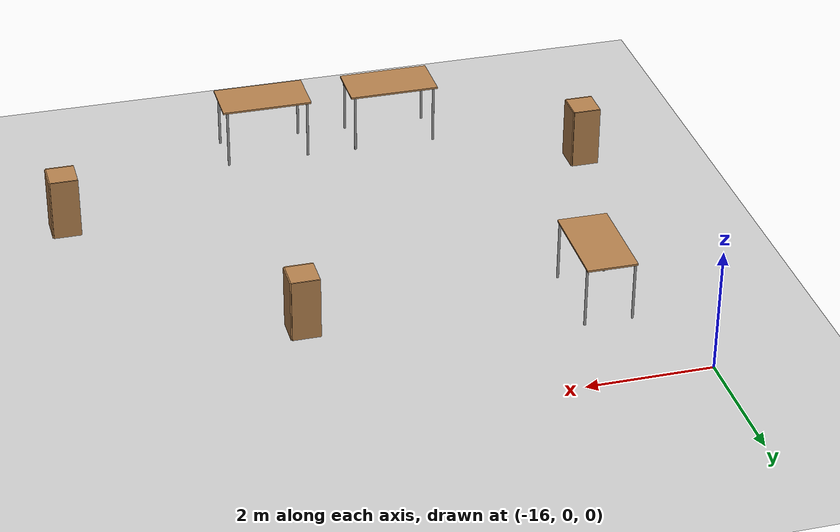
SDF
<sdf version="1.7">
 <world name="default">
  <model name="ground_plane">
   <static>1</static>
   <link name="link">
    <collision name="collision">
     <geometry><plane><normal>0 0 1</normal><size>100 100</size></plane></geometry>
     <surface><friction><ode><mu>100</mu><mu2>50</mu2></ode></friction></surface>
    </collision>
    <visual name="visual">
     <cast_shadows>0</cast_shadows>
     <geometry><plane><normal>0 0 1</normal><size>100 100</size></plane></geometry>
     <material>
      <script><uri>file://media/materials/scripts/gazebo.material</uri><name>Gazebo/Grey</name></script>
     </material>
    </visual>
   </link>
  </model>
  <model name="cabinet">
   <static>1</static>
   <link name="cabinet_bottom_plate">
    <inertial>
     <pose>0 0 -1 0 -0 0</pose>
     <inertia><ixx>2.05</ixx><ixy>0</ixy><ixz>0</ixz><iyy>2.05</iyy><iyz>0</iyz><izz>2.05</izz></inertia>
     <mass>25</mass>
    </inertial>
    <collision name="cabinet_bottom_plate_geom">
     <pose>0 0 0.01 0 -0 0</pose>
     <geometry><box><size>0.45 0.45 0.02</size></box></geometry>
    </collision>
    <visual name="cabinet_bottom_plate_geom_visual">
     <pose>0 0 0.01 0 -0 0</pose>
     <geometry><box><size>0.45 0.45 0.02</size></box></geometry>
     <material>
      <script><uri>file://media/materials/scripts/gazebo.material</uri><name>Gazebo/Wood</name></script>
     </material>
    </visual>
    <collision name="cabinet_bottom_plate_geom_cabinet_back_plate">
     <pose>0.235 0 0.51 0 -0 0</pose>
     <geometry><box><size>0.02 0.45 1.02</size></box></geometry>
    </collision>
    <visual name="cabinet_bottom_plate_geom_cabinet_back_plate_visual">
     <pose>0.235 0 0.51 0 -0 0</pose>
     <geometry><box><size>0.02 0.45 1.02</size></box></geometry>
     <material>
      <script><uri>file://media/materials/scripts/gazebo.material</uri><name>Gazebo/Wood</name></script>
     </material>
    </visual>
    <collision name="cabinet_bottom_plate_geom_cabinet_left_plate">
     <pose>0 0.235 0.51 0 -0 0</pose>
     <geometry><box><size>0.45 0.02 1.02</size></box></geometry>
    </collision>
    <visual name="cabinet_bottom_plate_geom_cabinet_left_plate_visual">
     <pose>0 0.235 0.51 0 -0 0</pose>
     <geometry><box><size>0.45 0.02 1.02</size></box></geometry>
     <material>
      <script><uri>file://media/materials/scripts/gazebo.material</uri><name>Gazebo/Wood</name></script>
     </material>
    </visual>
    <collision name="cabinet_bottom_plate_geom_cabinet_middle_plate">
     <pose>0 0 0.51 0 -0 0</pose>
     <geometry><box><size>0.45 0.45 0.02</size></box></geometry>
    </collision>
    <visual name="cabinet_bottom_plate_geom_cabinet_middle_plate_visual">
     <pose>0 0 0.51 0 -0 0</pose>
     <geometry><box><size>0.45 0.45 0.02</size></box></geometry>
     <material>
      <script><uri>file://media/materials/scripts/gazebo.material</uri><name>Gazebo/Wood</name></script>
     </material>
    </visual>
    <collision name="cabinet_bottom_plate_geom_cabinet_right_plate">
     <pose>0 -0.235 0.51 0 -0 0</pose>
     <geometry><box><size>0.45 0.02 1.02</size></box></geometry>
    </collision>
    <visual name="cabinet_bottom_plate_geom_cabinet_right_plate_visual">
     <pose>0 -0.235 0.51 0 -0 0</pose>
     <geometry><box><size>0.45 0.02 1.02</size></box></geometry>
     <material>
      <script><uri>file://media/materials/scripts/gazebo.material</uri><name>Gazebo/Wood</name></script>
     </material>
    </visual>
    <collision name="cabinet_bottom_plate_geom_cabinet_top_plate">
     <pose>0 0 1.01 0 -0 0</pose>
     <geometry><box><size>0.45 0.45 0.02</size></box></geometry>
    </collision>
    <visual name="cabinet_bottom_plate_geom_cabinet_top_plate_visual">
     <pose>0 0 1.01 0 -0 0</pose>
     <geometry><box><size>0.45 0.45 0.02</size></box></geometry>
     <material>
      <script><uri>file://media/materials/scripts/gazebo.material</uri><name>Gazebo/Wood</name></script>
     </material>
    </visual>
   </link>
   <pose>-16.043 -6.34419 0 0 -0 0</pose>
  </model>
  <model name="cabinet_0">
   <static>1</static>
   <link name="cabinet_bottom_plate">
    <inertial>
     <pose>0 0 -1 0 -0 0</pose>
     <inertia><ixx>2.05</ixx><ixy>0</ixy><ixz>0</ixz><iyy>2.05</iyy><iyz>0</iyz><izz>2.05</izz></inertia>
     <mass>25</mass>
    </inertial>
    <collision name="cabinet_bottom_plate_geom">
     <pose>0 0 0.01 0 -0 0</pose>
     <geometry><box><size>0.45 0.45 0.02</size></box></geometry>
    </collision>
    <visual name="cabinet_bottom_plate_geom_visual">
     <pose>0 0 0.01 0 -0 0</pose>
     <geometry><box><size>0.45 0.45 0.02</size></box></geometry>
     <material>
      <script><uri>file://media/materials/scripts/gazebo.material</uri><name>Gazebo/Wood</name></script>
     </material>
    </visual>
    <collision name="cabinet_bottom_plate_geom_cabinet_back_plate">
     <pose>0.235 0 0.51 0 -0 0</pose>
     <geometry><box><size>0.02 0.45 1.02</size></box></geometry>
    </collision>
    <visual name="cabinet_bottom_plate_geom_cabinet_back_plate_visual">
     <pose>0.235 0 0.51 0 -0 0</pose>
     <geometry><box><size>0.02 0.45 1.02</size></box></geometry>
     <material>
      <script><uri>file://media/materials/scripts/gazebo.material</uri><name>Gazebo/Wood</name></script>
     </material>
    </visual>
    <collision name="cabinet_bottom_plate_geom_cabinet_left_plate">
     <pose>0 0.235 0.51 0 -0 0</pose>
     <geometry><box><size>0.45 0.02 1.02</size></box></geometry>
    </collision>
    <visual name="cabinet_bottom_plate_geom_cabinet_left_plate_visual">
     <pose>0 0.235 0.51 0 -0 0</pose>
     <geometry><box><size>0.45 0.02 1.02</size></box></geometry>
     <material>
      <script><uri>file://media/materials/scripts/gazebo.material</uri><name>Gazebo/Wood</name></script>
     </material>
    </visual>
    <collision name="cabinet_bottom_plate_geom_cabinet_middle_plate">
     <pose>0 0 0.51 0 -0 0</pose>
     <geometry><box><size>0.45 0.45 0.02</size></box></geometry>
    </collision>
    <visual name="cabinet_bottom_plate_geom_cabinet_middle_plate_visual">
     <pose>0 0 0.51 0 -0 0</pose>
     <geometry><box><size>0.45 0.45 0.02</size></box></geometry>
     <material>
      <script><uri>file://media/materials/scripts/gazebo.material</uri><name>Gazebo/Wood</name></script>
     </material>
    </visual>
    <collision name="cabinet_bottom_plate_geom_cabinet_right_plate">
     <pose>0 -0.235 0.51 0 -0 0</pose>
     <geometry><box><size>0.45 0.02 1.02</size></box></geometry>
    </collision>
    <visual name="cabinet_bottom_plate_geom_cabinet_right_plate_visual">
     <pose>0 -0.235 0.51 0 -0 0</pose>
     <geometry><box><size>0.45 0.02 1.02</size></box></geometry>
     <material>
      <script><uri>file://media/materials/scripts/gazebo.material</uri><name>Gazebo/Wood</name></script>
     </material>
    </visual>
    <collision name="cabinet_bottom_plate_geom_cabinet_top_plate">
     <pose>0 0 1.01 0 -0 0</pose>
     <geometry><box><size>0.45 0.45 0.02</size></box></geometry>
    </collision>
    <visual name="cabinet_bottom_plate_geom_cabinet_top_plate_visual">
     <pose>0 0 1.01 0 -0 0</pose>
     <geometry><box><size>0.45 0.45 0.02</size></box></geometry>
     <material>
      <script><uri>file://media/materials/scripts/gazebo.material</uri><name>Gazebo/Wood</name></script>
     </material>
    </visual>
   </link>
   <pose>-7.30045 -6.2673 0 0 -0 0</pose>
  </model>
  <model name="cabinet_1">
   <static>1</static>
   <link name="cabinet_bottom_plate">
    <inertial>
     <pose>0 0 -1 0 -0 0</pose>
     <inertia><ixx>2.05</ixx><ixy>0</ixy><ixz>0</ixz><iyy>2.05</iyy><iyz>0</iyz><izz>2.05</izz></inertia>
     <mass>25</mass>
    </inertial>
    <collision name="cabinet_bottom_plate_geom">
     <pose>0 0 0.01 0 -0 0</pose>
     <geometry><box><size>0.45 0.45 0.02</size></box></geometry>
    </collision>
    <visual name="cabinet_bottom_plate_geom_visual">
     <pose>0 0 0.01 0 -0 0</pose>
     <geometry><box><size>0.45 0.45 0.02</size></box></geometry>
     <material>
      <script><uri>file://media/materials/scripts/gazebo.material</uri><name>Gazebo/Wood</name></script>
     </material>
    </visual>
    <collision name="cabinet_bottom_plate_geom_cabinet_back_plate">
     <pose>0.235 0 0.51 0 -0 0</pose>
     <geometry><box><size>0.02 0.45 1.02</size></box></geometry>
    </collision>
    <visual name="cabinet_bottom_plate_geom_cabinet_back_plate_visual">
     <pose>0.235 0 0.51 0 -0 0</pose>
     <geometry><box><size>0.02 0.45 1.02</size></box></geometry>
     <material>
      <script><uri>file://media/materials/scripts/gazebo.material</uri><name>Gazebo/Wood</name></script>
     </material>
    </visual>
    <collision name="cabinet_bottom_plate_geom_cabinet_left_plate">
     <pose>0 0.235 0.51 0 -0 0</pose>
     <geometry><box><size>0.45 0.02 1.02</size></box></geometry>
    </collision>
    <visual name="cabinet_bottom_plate_geom_cabinet_left_plate_visual">
     <pose>0 0.235 0.51 0 -0 0</pose>
     <geometry><box><size>0.45 0.02 1.02</size></box></geometry>
     <material>
      <script><uri>file://media/materials/scripts/gazebo.material</uri><name>Gazebo/Wood</name></script>
     </material>
    </visual>
    <collision name="cabinet_bottom_plate_geom_cabinet_middle_plate">
     <pose>0 0 0.51 0 -0 0</pose>
     <geometry><box><size>0.45 0.45 0.02</size></box></geometry>
    </collision>
    <visual name="cabinet_bottom_plate_geom_cabinet_middle_plate_visual">
     <pose>0 0 0.51 0 -0 0</pose>
     <geometry><box><size>0.45 0.45 0.02</size></box></geometry>
     <material>
      <script><uri>file://media/materials/scripts/gazebo.material</uri><name>Gazebo/Wood</name></script>
     </material>
    </visual>
    <collision name="cabinet_bottom_plate_geom_cabinet_right_plate">
     <pose>0 -0.235 0.51 0 -0 0</pose>
     <geometry><box><size>0.45 0.02 1.02</size></box></geometry>
    </collision>
    <visual name="cabinet_bottom_plate_geom_cabinet_right_plate_visual">
     <pose>0 -0.235 0.51 0 -0 0</pose>
     <geometry><box><size>0.45 0.02 1.02</size></box></geometry>
     <material>
      <script><uri>file://media/materials/scripts/gazebo.material</uri><name>Gazebo/Wood</name></script>
     </material>
    </visual>
    <collision name="cabinet_bottom_plate_geom_cabinet_top_plate">
     <pose>0 0 1.01 0 -0 0</pose>
     <geometry><box><size>0.45 0.45 0.02</size></box></geometry>
    </collision>
    <visual name="cabinet_bottom_plate_geom_cabinet_top_plate_visual">
     <pose>0 0 1.01 0 -0 0</pose>
     <geometry><box><size>0.45 0.45 0.02</size></box></geometry>
     <material>
      <script><uri>file://media/materials/scripts/gazebo.material</uri><name>Gazebo/Wood</name></script>
     </material>
    </visual>
   </link>
   <pose>-10.3507 -2.49286 0 0 -0 0</pose>
  </model>
  <model name="table">
   <static>1</static>
   <link name="link">
    <collision name="surface">
     <pose>0 0 1 0 -0 0</pose>
     <geometry><box><size>1.5 0.8 0.03</size></box></geometry>
     <surface><friction><ode><mu>0.6</mu><mu2>0.6</mu2></ode></friction></surface>
    </collision>
    <visual name="visual1">
     <pose>0 0 1 0 -0 0</pose>
     <geometry><box><size>1.5 0.8 0.03</size></box></geometry>
     <material>
      <script><uri>file://media/materials/scripts/gazebo.material</uri><name>Gazebo/Wood</name></script>
     </material>
    </visual>
    <collision name="front_left_leg">
     <pose>0.68 0.38 0.5 0 -0 0</pose>
     <geometry><cylinder><radius>0.02</radius><length>1</length></cylinder></geometry>
    </collision>
    <visual name="front_left_leg">
     <pose>0.68 0.38 0.5 0 -0 0</pose>
     <geometry><cylinder><radius>0.02</radius><length>1</length></cylinder></geometry>
     <material>
      <script><uri>file://media/materials/scripts/gazebo.material</uri><name>Gazebo/Grey</name></script>
     </material>
    </visual>
    <collision name="front_right_leg">
     <pose>0.68 -0.38 0.5 0 -0 0</pose>
     <geometry><cylinder><radius>0.02</radius><length>1</length></cylinder></geometry>
    </collision>
    <visual name="front_right_leg">
     <pose>0.68 -0.38 0.5 0 -0 0</pose>
     <geometry><cylinder><radius>0.02</radius><length>1</length></cylinder></geometry>
     <material>
      <script><uri>file://media/materials/scripts/gazebo.material</uri><name>Gazebo/Grey</name></script>
     </material>
    </visual>
    <collision name="back_right_leg">
     <pose>-0.68 -0.38 0.5 0 -0 0</pose>
     <geometry><cylinder><radius>0.02</radius><length>1</length></cylinder></geometry>
    </collision>
    <visual name="back_right_leg">
     <pose>-0.68 -0.38 0.5 0 -0 0</pose>
     <geometry><cylinder><radius>0.02</radius><length>1</length></cylinder></geometry>
     <material>
      <script><uri>file://media/materials/scripts/gazebo.material</uri><name>Gazebo/Grey</name></script>
     </material>
    </visual>
    <collision name="back_left_leg">
     <pose>-0.68 0.38 0.5 0 -0 0</pose>
     <geometry><cylinder><radius>0.02</radius><length>1</length></cylinder></geometry>
    </collision>
    <visual name="back_left_leg">
     <pose>-0.68 0.38 0.5 0 -0 0</pose>
     <geometry><cylinder><radius>0.02</radius><length>1</length></cylinder></geometry>
     <material>
      <script><uri>file://media/materials/scripts/gazebo.material</uri><name>Gazebo/Grey</name></script>
     </material>
    </visual>
   </link>
   <pose>-13.1215 -7.97661 -0.016902 0 -0 0</pose>
  </model>
  <model name="table_0">
   <static>1</static>
   <link name="link">
    <collision name="surface">
     <pose>0 0 1 0 -0 0</pose>
     <geometry><box><size>1.5 0.8 0.03</size></box></geometry>
     <surface><friction><ode><mu>0.6</mu><mu2>0.6</mu2></ode></friction></surface>
    </collision>
    <visual name="visual1">
     <pose>0 0 1 0 -0 0</pose>
     <geometry><box><size>1.5 0.8 0.03</size></box></geometry>
     <material>
      <script><uri>file://media/materials/scripts/gazebo.material</uri><name>Gazebo/Wood</name></script>
     </material>
    </visual>
    <collision name="front_left_leg">
     <pose>0.68 0.38 0.5 0 -0 0</pose>
     <geometry><cylinder><radius>0.02</radius><length>1</length></cylinder></geometry>
    </collision>
    <visual name="front_left_leg">
     <pose>0.68 0.38 0.5 0 -0 0</pose>
     <geometry><cylinder><radius>0.02</radius><length>1</length></cylinder></geometry>
     <material>
      <script><uri>file://media/materials/scripts/gazebo.material</uri><name>Gazebo/Grey</name></script>
     </material>
    </visual>
    <collision name="front_right_leg">
     <pose>0.68 -0.38 0.5 0 -0 0</pose>
     <geometry><cylinder><radius>0.02</radius><length>1</length></cylinder></geometry>
    </collision>
    <visual name="front_right_leg">
     <pose>0.68 -0.38 0.5 0 -0 0</pose>
     <geometry><cylinder><radius>0.02</radius><length>1</length></cylinder></geometry>
     <material>
      <script><uri>file://media/materials/scripts/gazebo.material</uri><name>Gazebo/Grey</name></script>
     </material>
    </visual>
    <collision name="back_right_leg">
     <pose>-0.68 -0.38 0.5 0 -0 0</pose>
     <geometry><cylinder><radius>0.02</radius><length>1</length></cylinder></geometry>
    </collision>
    <visual name="back_right_leg">
     <pose>-0.68 -0.38 0.5 0 -0 0</pose>
     <geometry><cylinder><radius>0.02</radius><length>1</length></cylinder></geometry>
     <material>
      <script><uri>file://media/materials/scripts/gazebo.material</uri><name>Gazebo/Grey</name></script>
     </material>
    </visual>
    <collision name="back_left_leg">
     <pose>-0.68 0.38 0.5 0 -0 0</pose>
     <geometry><cylinder><radius>0.02</radius><length>1</length></cylinder></geometry>
    </collision>
    <visual name="back_left_leg">
     <pose>-0.68 0.38 0.5 0 -0 0</pose>
     <geometry><cylinder><radius>0.02</radius><length>1</length></cylinder></geometry>
     <material>
      <script><uri>file://media/materials/scripts/gazebo.material</uri><name>Gazebo/Grey</name></script>
     </material>
    </visual>
   </link>
   <pose>-10.9329 -7.97595 0 0 -0 0</pose>
  </model>
  <model name="table_1">
   <static>1</static>
   <link name="link">
    <collision name="surface">
     <pose>0 0 1 0 -0 0</pose>
     <geometry><box><size>1.5 0.8 0.03</size></box></geometry>
     <surface><friction><ode><mu>0.6</mu><mu2>0.6</mu2></ode></friction></surface>
    </collision>
    <visual name="visual1">
     <pose>0 0 1 0 -0 0</pose>
     <geometry><box><size>1.5 0.8 0.03</size></box></geometry>
     <material>
      <script><uri>file://media/materials/scripts/gazebo.material</uri><name>Gazebo/Wood</name></script>
     </material>
    </visual>
    <collision name="front_left_leg">
     <pose>0.68 0.38 0.5 0 -0 0</pose>
     <geometry><cylinder><radius>0.02</radius><length>1</length></cylinder></geometry>
    </collision>
    <visual name="front_left_leg">
     <pose>0.68 0.38 0.5 0 -0 0</pose>
     <geometry><cylinder><radius>0.02</radius><length>1</length></cylinder></geometry>
     <material>
      <script><uri>file://media/materials/scripts/gazebo.material</uri><name>Gazebo/Grey</name></script>
     </material>
    </visual>
    <collision name="front_right_leg">
     <pose>0.68 -0.38 0.5 0 -0 0</pose>
     <geometry><cylinder><radius>0.02</radius><length>1</length></cylinder></geometry>
    </collision>
    <visual name="front_right_leg">
     <pose>0.68 -0.38 0.5 0 -0 0</pose>
     <geometry><cylinder><radius>0.02</radius><length>1</length></cylinder></geometry>
     <material>
      <script><uri>file://media/materials/scripts/gazebo.material</uri><name>Gazebo/Grey</name></script>
     </material>
    </visual>
    <collision name="back_right_leg">
     <pose>-0.68 -0.38 0.5 0 -0 0</pose>
     <geometry><cylinder><radius>0.02</radius><length>1</length></cylinder></geometry>
    </collision>
    <visual name="back_right_leg">
     <pose>-0.68 -0.38 0.5 0 -0 0</pose>
     <geometry><cylinder><radius>0.02</radius><length>1</length></cylinder></geometry>
     <material>
      <script><uri>file://media/materials/scripts/gazebo.material</uri><name>Gazebo/Grey</name></script>
     </material>
    </visual>
    <collision name="back_left_leg">
     <pose>-0.68 0.38 0.5 0 -0 0</pose>
     <geometry><cylinder><radius>0.02</radius><length>1</length></cylinder></geometry>
    </collision>
    <visual name="back_left_leg">
     <pose>-0.68 0.38 0.5 0 -0 0</pose>
     <geometry><cylinder><radius>0.02</radius><length>1</length></cylinder></geometry>
     <material>
      <script><uri>file://media/materials/scripts/gazebo.material</uri><name>Gazebo/Grey</name></script>
     </material>
    </visual>
   </link>
   <pose>-14.895 -2.22747 0 0 0 -1.57916</pose>
  </model>
 </world>
</sdf>
